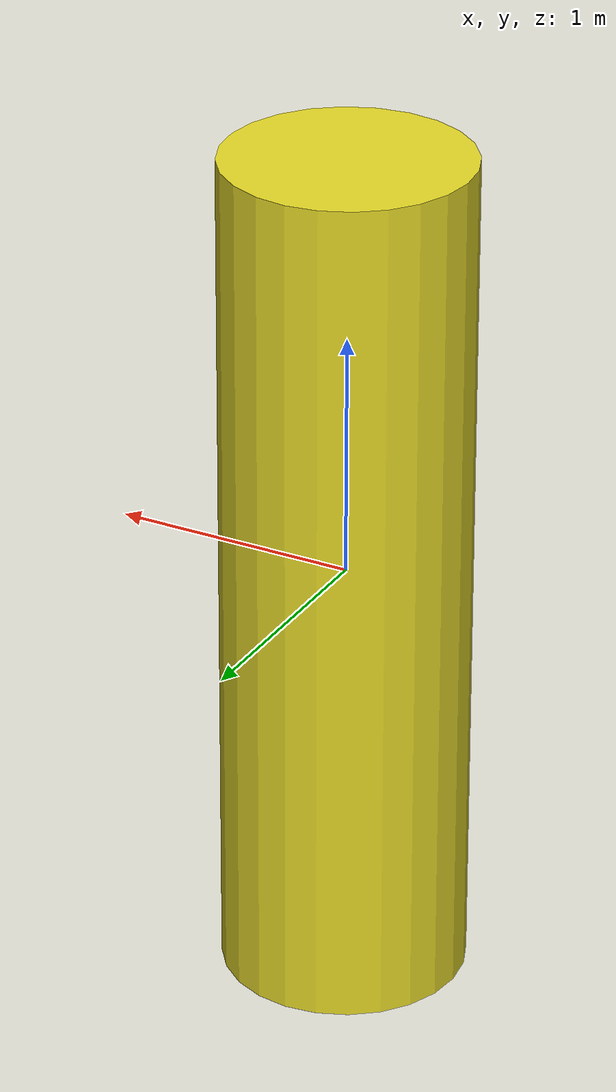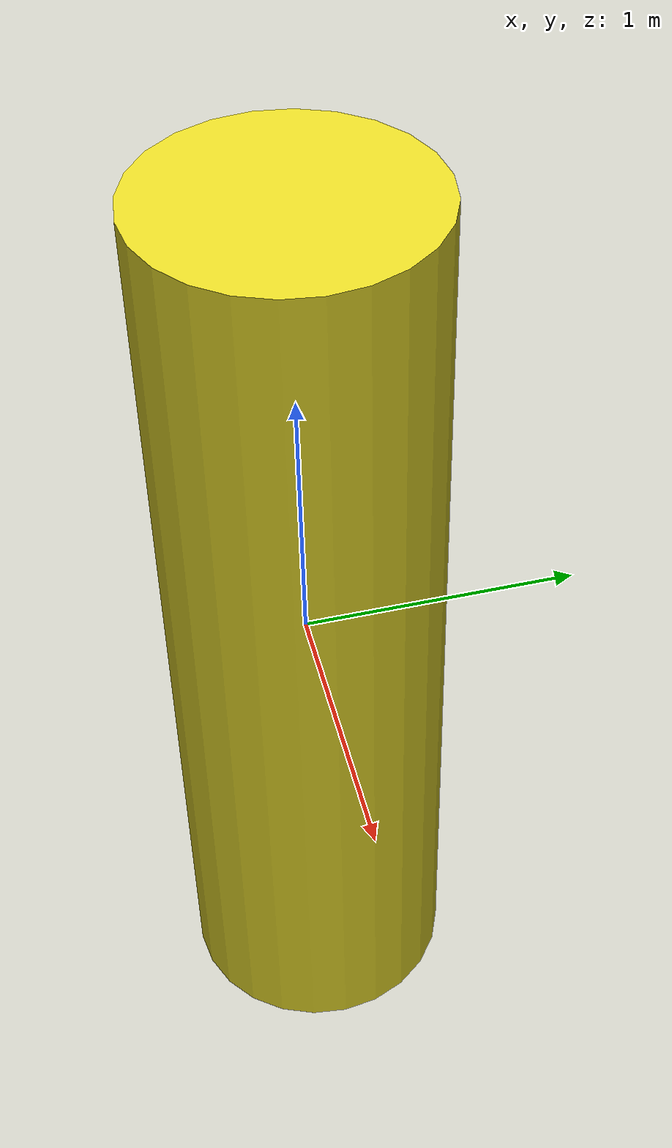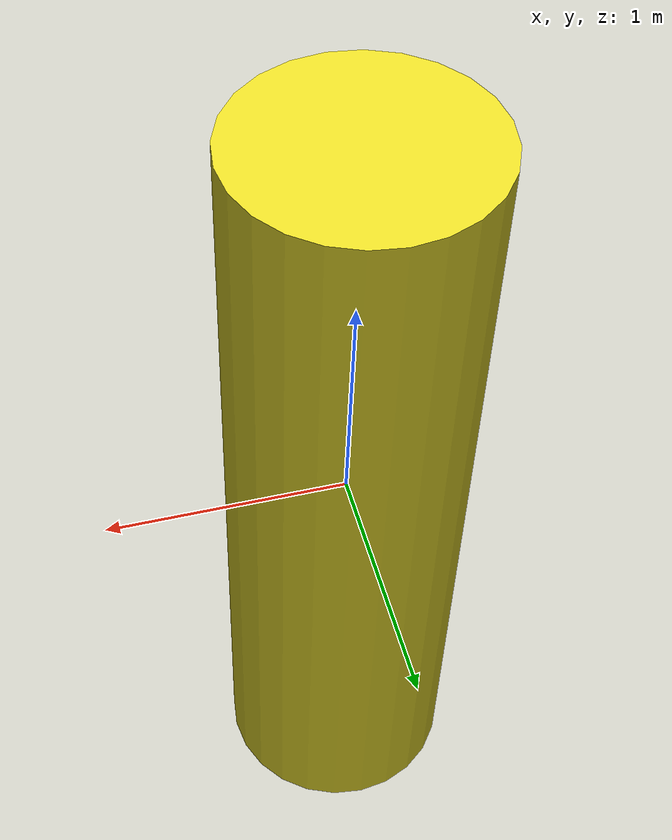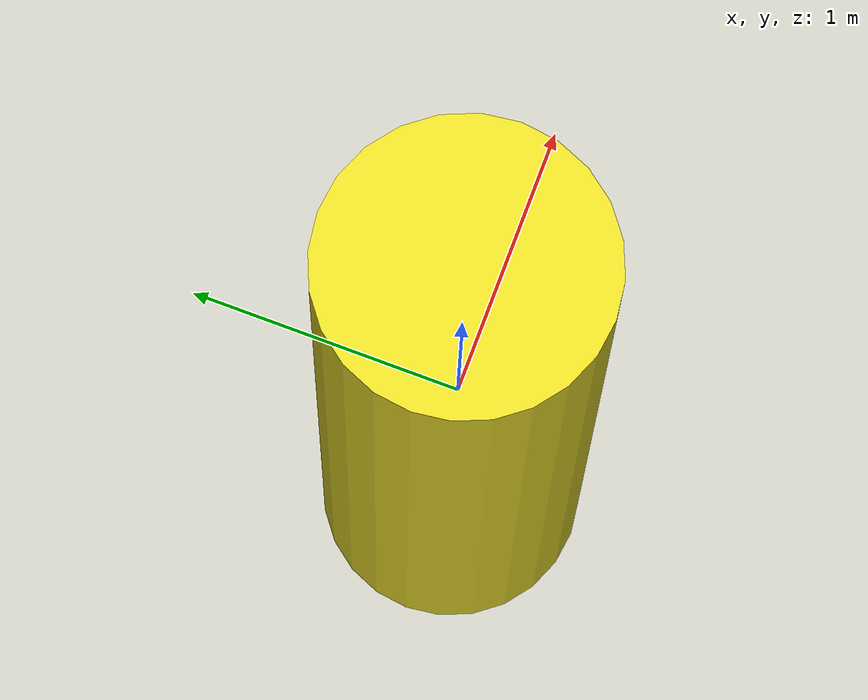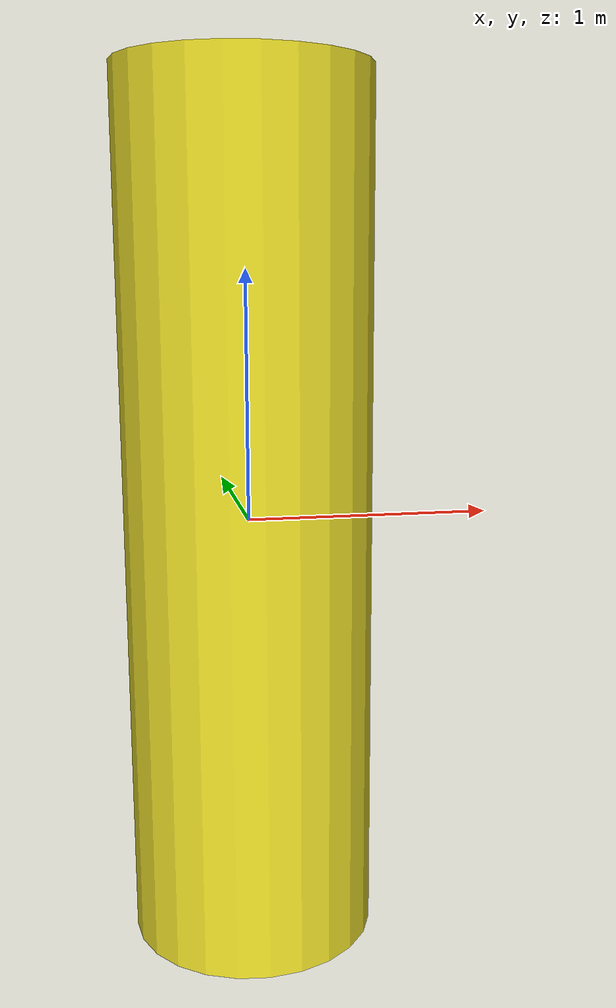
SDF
<?xml version='1.0'?>
<sdf version='1.6'>
  <model name='pillar_m'>
    <link name='link'>
      <inertial>
        <mass>1000</mass>
        <pose frame=''>0 0 0 0 -0 0</pose>
      </inertial>
      <self_collide>0</self_collide>
      <enable_wind>0</enable_wind>
      <kinematic>0</kinematic>
      <pose frame=''>0 0 0 0 -0 0</pose>
      <gravity>1</gravity>
      <visual name='visual'>
        <geometry>
          <cylinder>
            <radius>0.5</radius>
            <length>3.5</length>
          </cylinder>
        </geometry>
        <material>
          <script>
            <name>Gazebo/Yellow</name>
            <uri>file://media/materials/scripts/gazebo.material</uri>
          </script>
          <shader type='pixel'>
            <normal_map>__default__</normal_map>
          </shader>
          <ambient>0.988 0.914 0.31 1</ambient>
          <diffuse>0.7 0.7 0.7 1</diffuse>
          <specular>0.01 0.01 0.01 1</specular>
          <emissive>0 0 0 1</emissive>
        </material>
        <pose frame=''>0 0 0 0 -0 0</pose>
        <transparency>0</transparency>
        <cast_shadows>1</cast_shadows>
      </visual>
      <collision name='collision'>
        <laser_retro>0</laser_retro>
        <max_contacts>10</max_contacts>
        <pose frame=''>0 0 0 0 -0 0</pose>
        <geometry>
          <cylinder>
            <radius>0.5</radius>
            <length>3.5</length>
          </cylinder>
        </geometry>
      </collision>
    </link>
    <static>0</static>
    <allow_auto_disable>1</allow_auto_disable>
  </model>
</sdf>
